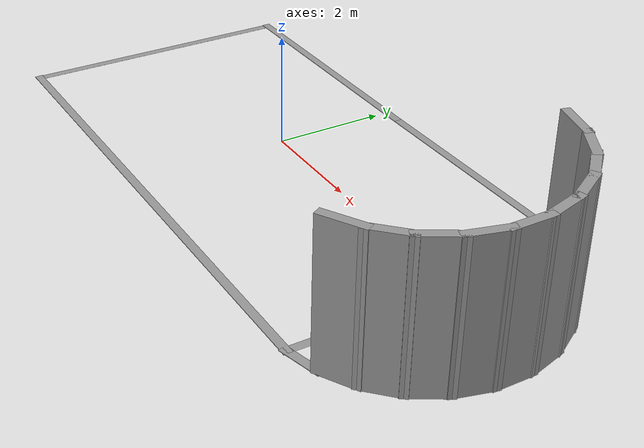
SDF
<?xml version='1.0'?>
<sdf version='1.7'>
  <model name='circuito'>
    <pose>1.26414 -0.291384 0 0 -0 0</pose>
    <link name='Wall_39'>
      <collision name='Wall_39_Collision'>
        <geometry>
          <box>
            <size>5.00033 0.15 0.01</size>
          </box>
        </geometry>
        <pose>0 0 0.005 0 -0 0</pose>
      </collision>
      <visual name='Wall_39_Visual'>
        <pose>0 0 0.005 0 -0 0</pose>
        <geometry>
          <box>
            <size>5.00033 0.15 0.01</size>
          </box>
        </geometry>
        <material>
          <script>
            <uri>file://media/materials/scripts/gazebo.material</uri>
            <name>Gazebo/Grey</name>
          </script>
          <ambient>1 1 1 1</ambient>
        </material>
        <meta>
          <layer>0</layer>
        </meta>
      </visual>
      <pose>-3.40014 2.53238 0 0 -0 3.14159</pose>
    </link>
    <link name='Wall_40'>
      <collision name='Wall_40_Collision'>
        <geometry>
          <box>
            <size>5.25008 0.15 0.001</size>
          </box>
        </geometry>
        <pose>0 0 0.0005 0 -0 0</pose>
      </collision>
      <visual name='Wall_40_Visual'>
        <pose>0 0 0.0005 0 -0 0</pose>
        <geometry>
          <box>
            <size>5.25008 0.15 0.001</size>
          </box>
        </geometry>
        <material>
          <script>
            <uri>file://media/materials/scripts/gazebo.material</uri>
            <name>Gazebo/Grey</name>
          </script>
          <ambient>1 1 1 1</ambient>
        </material>
        <meta>
          <layer>0</layer>
        </meta>
      </visual>
      <pose>-5.81514 -0.017616 0 0 -0 -1.56688</pose>
    </link>
    <link name='Wall_41'>
      <collision name='Wall_41_Collision'>
        <geometry>
          <box>
            <size>9.78539 0.15 0.01</size>
          </box>
        </geometry>
        <pose>0 0 0.005 0 -0 0</pose>
      </collision>
      <visual name='Wall_41_Visual'>
        <pose>0 0 0.005 0 -0 0</pose>
        <geometry>
          <box>
            <size>9.78539 0.15 0.01</size>
          </box>
        </geometry>
        <material>
          <script>
            <uri>file://media/materials/scripts/gazebo.material</uri>
            <name>Gazebo/Grey</name>
          </script>
          <ambient>1 1 1 1</ambient>
        </material>
        <meta>
          <layer>0</layer>
        </meta>
      </visual>
      <pose>-0.987644 -2.55012 0 0 -0 0.003633</pose>
    </link>
    <link name='Wall_42'>
      <collision name='Wall_42_Collision'>
        <geometry>
          <box>
            <size>5.25 0.15 0</size>
          </box>
        </geometry>
        <pose>0 0 0.001 0 -0 0</pose>
      </collision>
      <visual name='Wall_42_Visual'>
        <pose>0 0 0.001 0 -0 0</pose>
        <geometry>
          <box>
            <size>5.25 0.15 0</size>
          </box>
        </geometry>
        <material>
          <script>
            <uri>file://media/materials/scripts/gazebo.material</uri>
            <name>Gazebo/Grey</name>
          </script>
          <ambient>1 1 1 1</ambient>
        </material>
        <meta>
          <layer>0</layer>
        </meta>
      </visual>
      <pose>3.82986 0.017384 0 0 -0 1.5708</pose>
    </link>
    <link name='Wall_43'>
      <collision name='Wall_43_Collision'>
        <geometry>
          <box>
            <size>4.95524 0.15 0.01</size>
          </box>
        </geometry>
        <pose>0 0 0.005 0 -0 0</pose>
      </collision>
      <visual name='Wall_43_Visual'>
        <pose>0 0 0.005 0 -0 0</pose>
        <geometry>
          <box>
            <size>4.95524 0.15 0.01</size>
          </box>
        </geometry>
        <material>
          <script>
            <uri>file://media/materials/scripts/gazebo.material</uri>
            <name>Gazebo/Grey</name>
          </script>
          <ambient>1 1 1 1</ambient>
        </material>
        <meta>
          <layer>0</layer>
        </meta>
      </visual>
      <pose>1.42736 2.54988 0 0 -0 -3.13431</pose>
    </link>
    <link name='Wall_66'>
      <collision name='Wall_66_Collision'>
        <geometry>
          <box>
            <size>0.75 0.15 0.01</size>
          </box>
        </geometry>
        <pose>0 0 0.005 0 -0 0</pose>
      </collision>
      <visual name='Wall_66_Visual'>
        <pose>0 0 0.005 0 -0 0</pose>
        <geometry>
          <box>
            <size>0.75 0.15 0.01</size>
          </box>
        </geometry>
        <material>
          <script>
            <uri>file://media/materials/scripts/gazebo.material</uri>
            <name>Gazebo/Grey</name>
          </script>
          <ambient>1 1 1 1</ambient>
        </material>
        <meta>
          <layer>0</layer>
        </meta>
      </visual>
      <pose>4.11986 -2.45512 0 0 -0 0.261139</pose>
    </link>
    <link name='Wall_67'>
      <collision name='Wall_67_Collision'>
        <geometry>
          <box>
            <size>0.75 0.15 2.5</size>
          </box>
        </geometry>
        <pose>0 0 1.25 0 -0 0</pose>
      </collision>
      <visual name='Wall_67_Visual'>
        <pose>0 0 1.25 0 -0 0</pose>
        <geometry>
          <box>
            <size>0.75 0.15 2.5</size>
          </box>
        </geometry>
        <material>
          <script>
            <uri>file://media/materials/scripts/gazebo.material</uri>
            <name>Gazebo/Grey</name>
          </script>
          <ambient>1 1 1 1</ambient>
        </material>
        <meta>
          <layer>0</layer>
        </meta>
      </visual>
      <pose>4.66944 -2.22747 0 0 -0 0.52439</pose>
    </link>
    <link name='Wall_68'>
      <collision name='Wall_68_Collision'>
        <geometry>
          <box>
            <size>0.75 0.15 2.5</size>
          </box>
        </geometry>
        <pose>0 0 1.25 0 -0 0</pose>
      </collision>
      <visual name='Wall_68_Visual'>
        <pose>0 0 1.25 0 -0 0</pose>
        <geometry>
          <box>
            <size>0.75 0.15 2.5</size>
          </box>
        </geometry>
        <material>
          <script>
            <uri>file://media/materials/scripts/gazebo.material</uri>
            <name>Gazebo/Grey</name>
          </script>
          <ambient>1 1 1 1</ambient>
        </material>
        <meta>
          <layer>0</layer>
        </meta>
      </visual>
      <pose>5.14116 -1.86519 0 0 -0 0.785398</pose>
    </link>
    <link name='Wall_69'>
      <collision name='Wall_69_Collision'>
        <geometry>
          <box>
            <size>0.75 0.15 2.5</size>
          </box>
        </geometry>
        <pose>0 0 1.25 0 -0 0</pose>
      </collision>
      <visual name='Wall_69_Visual'>
        <pose>0 0 1.25 0 -0 0</pose>
        <geometry>
          <box>
            <size>0.75 0.15 2.5</size>
          </box>
        </geometry>
        <material>
          <script>
            <uri>file://media/materials/scripts/gazebo.material</uri>
            <name>Gazebo/Grey</name>
          </script>
          <ambient>1 1 1 1</ambient>
        </material>
        <meta>
          <layer>0</layer>
        </meta>
      </visual>
      <pose>5.50329 -1.39325 0 0 -0 1.0472</pose>
    </link>
    <link name='Wall_70'>
      <collision name='Wall_70_Collision'>
        <geometry>
          <box>
            <size>0.75 0.15 2.5</size>
          </box>
        </geometry>
        <pose>0 0 1.25 0 -0 0</pose>
      </collision>
      <visual name='Wall_70_Visual'>
        <pose>0 0 1.25 0 -0 0</pose>
        <geometry>
          <box>
            <size>0.75 0.15 2.5</size>
          </box>
        </geometry>
        <material>
          <script>
            <uri>file://media/materials/scripts/gazebo.material</uri>
            <name>Gazebo/Grey</name>
          </script>
          <ambient>1 1 1 1</ambient>
        </material>
        <meta>
          <layer>0</layer>
        </meta>
      </visual>
      <pose>5.73094 -0.843668 0 0 -0 1.309</pose>
    </link>
    <link name='Wall_71'>
      <collision name='Wall_71_Collision'>
        <geometry>
          <box>
            <size>0.75 0.15 2.5</size>
          </box>
        </geometry>
        <pose>0 0 1.25 0 -0 0</pose>
      </collision>
      <visual name='Wall_71_Visual'>
        <pose>0 0 1.25 0 -0 0</pose>
        <geometry>
          <box>
            <size>0.75 0.15 2.5</size>
          </box>
        </geometry>
        <material>
          <script>
            <uri>file://media/materials/scripts/gazebo.material</uri>
            <name>Gazebo/Grey</name>
          </script>
          <ambient>1 1 1 1</ambient>
        </material>
        <meta>
          <layer>0</layer>
        </meta>
      </visual>
      <pose>5.80858 -0.25389 0 0 -0 1.5708</pose>
    </link>
    <link name='Wall_72'>
      <collision name='Wall_72_Collision'>
        <geometry>
          <box>
            <size>0.75 0.15 2.5</size>
          </box>
        </geometry>
        <pose>0 0 1.25 0 -0 0</pose>
      </collision>
      <visual name='Wall_72_Visual'>
        <pose>0 0 1.25 0 -0 0</pose>
        <geometry>
          <box>
            <size>0.75 0.15 2.5</size>
          </box>
        </geometry>
        <material>
          <script>
            <uri>file://media/materials/scripts/gazebo.material</uri>
            <name>Gazebo/Grey</name>
          </script>
          <ambient>1 1 1 1</ambient>
        </material>
        <meta>
          <layer>0</layer>
        </meta>
      </visual>
      <pose>5.73094 0.335888 0 0 -0 1.8326</pose>
    </link>
    <link name='Wall_74'>
      <collision name='Wall_74_Collision'>
        <geometry>
          <box>
            <size>0.75 0.15 2.5</size>
          </box>
        </geometry>
        <pose>0 0 1.25 0 -0 0</pose>
      </collision>
      <visual name='Wall_74_Visual'>
        <pose>0 0 1.25 0 -0 0</pose>
        <geometry>
          <box>
            <size>0.75 0.15 2.5</size>
          </box>
        </geometry>
        <material>
          <script>
            <uri>file://media/materials/scripts/gazebo.material</uri>
            <name>Gazebo/Grey</name>
          </script>
          <ambient>1 1 1 1</ambient>
        </material>
        <meta>
          <layer>0</layer>
        </meta>
      </visual>
      <pose>5.50329 0.885473 0 0 -0 2.0944</pose>
    </link>
    <link name='Wall_75'>
      <collision name='Wall_75_Collision'>
        <geometry>
          <box>
            <size>0.75 0.15 2.5</size>
          </box>
        </geometry>
        <pose>0 0 1.25 0 -0 0</pose>
      </collision>
      <visual name='Wall_75_Visual'>
        <pose>0 0 1.25 0 -0 0</pose>
        <geometry>
          <box>
            <size>0.75 0.15 2.5</size>
          </box>
        </geometry>
        <material>
          <script>
            <uri>file://media/materials/scripts/gazebo.material</uri>
            <name>Gazebo/Grey</name>
          </script>
          <ambient>1 1 1 1</ambient>
        </material>
        <meta>
          <layer>0</layer>
        </meta>
      </visual>
      <pose>5.14116 1.35741 0 0 -0 2.35619</pose>
    </link>
    <link name='Wall_76'>
      <collision name='Wall_76_Collision'>
        <geometry>
          <box>
            <size>0.75 0.15 2.5</size>
          </box>
        </geometry>
        <pose>0 0 1.25 0 -0 0</pose>
      </collision>
      <visual name='Wall_76_Visual'>
        <pose>0 0 1.25 0 -0 0</pose>
        <geometry>
          <box>
            <size>0.75 0.15 2.5</size>
          </box>
        </geometry>
        <material>
          <script>
            <uri>file://media/materials/scripts/gazebo.material</uri>
            <name>Gazebo/Grey</name>
          </script>
          <ambient>1 1 1 1</ambient>
        </material>
        <meta>
          <layer>0</layer>
        </meta>
      </visual>
      <pose>4.66922 1.71955 0 0 -0 2.61799</pose>
    </link>
    <link name='Wall_77'>
      <collision name='Wall_77_Collision'>
        <geometry>
          <box>
            <size>0.75 0.15 2.5</size>
          </box>
        </geometry>
        <pose>0 0 1.25 0 -0 0</pose>
      </collision>
      <visual name='Wall_77_Visual'>
        <pose>0 0 1.25 0 -0 0</pose>
        <geometry>
          <box>
            <size>0.75 0.15 2.5</size>
          </box>
        </geometry>
        <material>
          <script>
            <uri>file://media/materials/scripts/gazebo.material</uri>
            <name>Gazebo/Grey</name>
          </script>
          <ambient>1 1 1 1</ambient>
        </material>
        <meta>
          <layer>0</layer>
        </meta>
      </visual>
      <pose>4.11963 1.94719 0 0 -0 2.87979</pose>
    </link>
    <static>1</static>
  </model>
</sdf>
